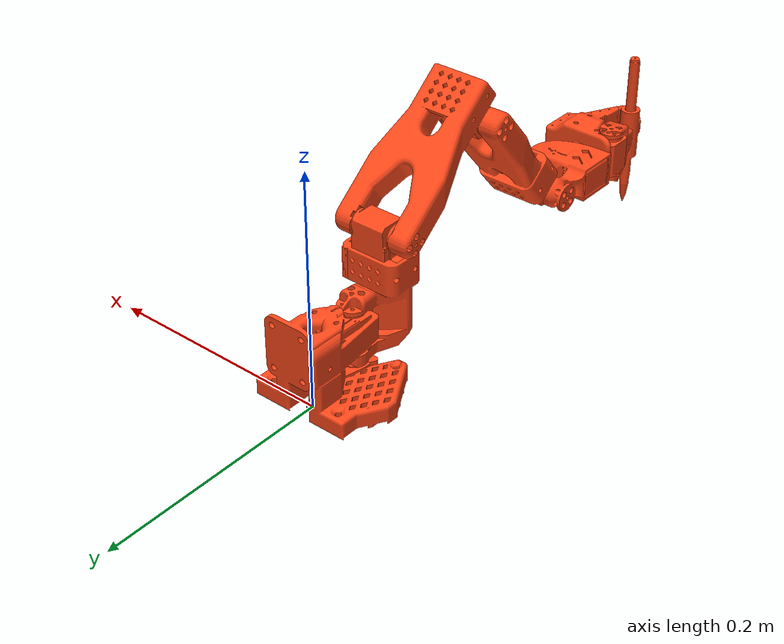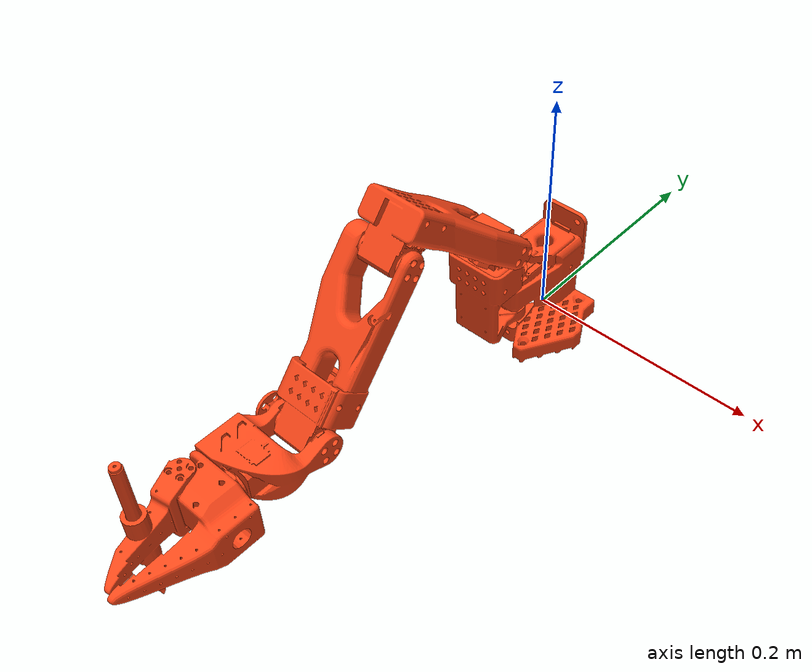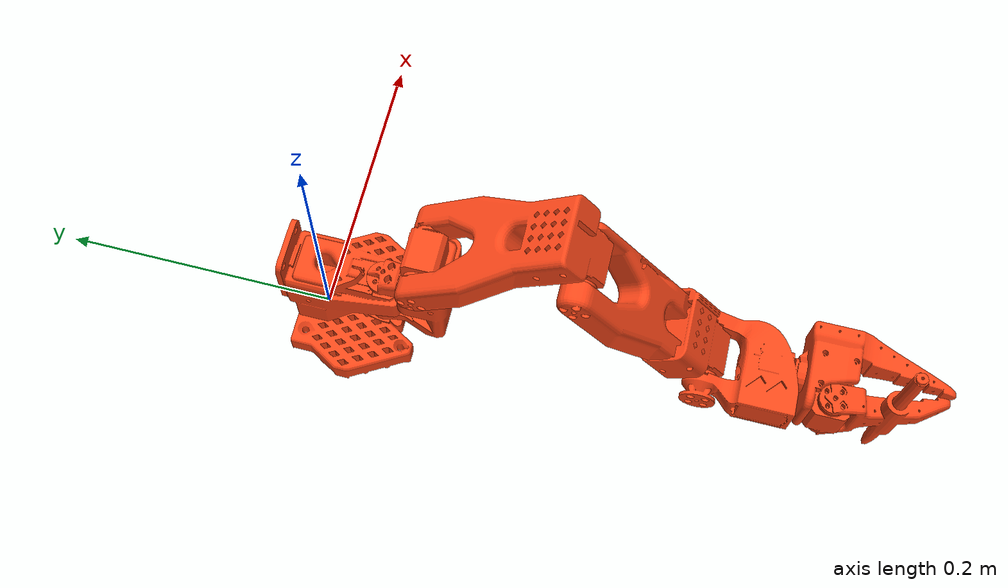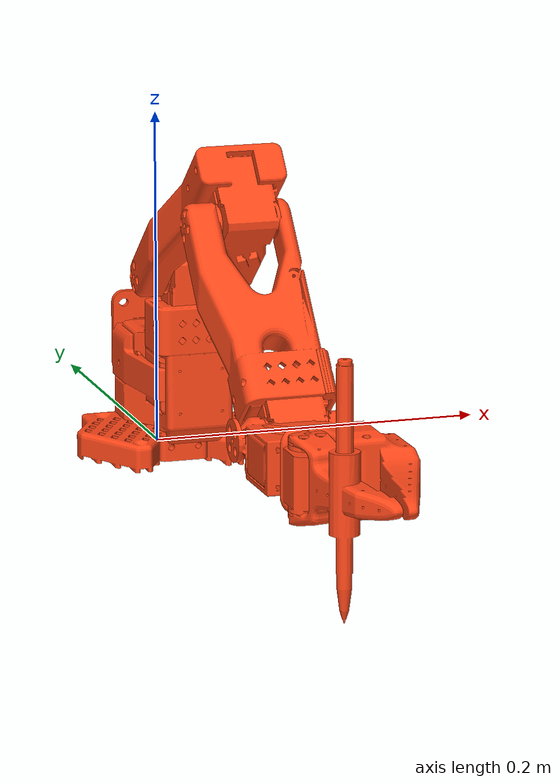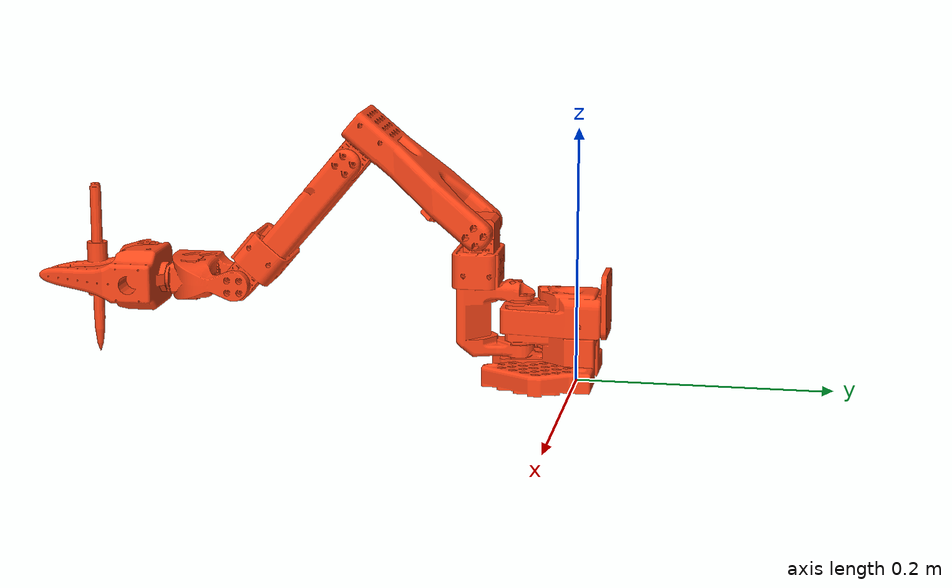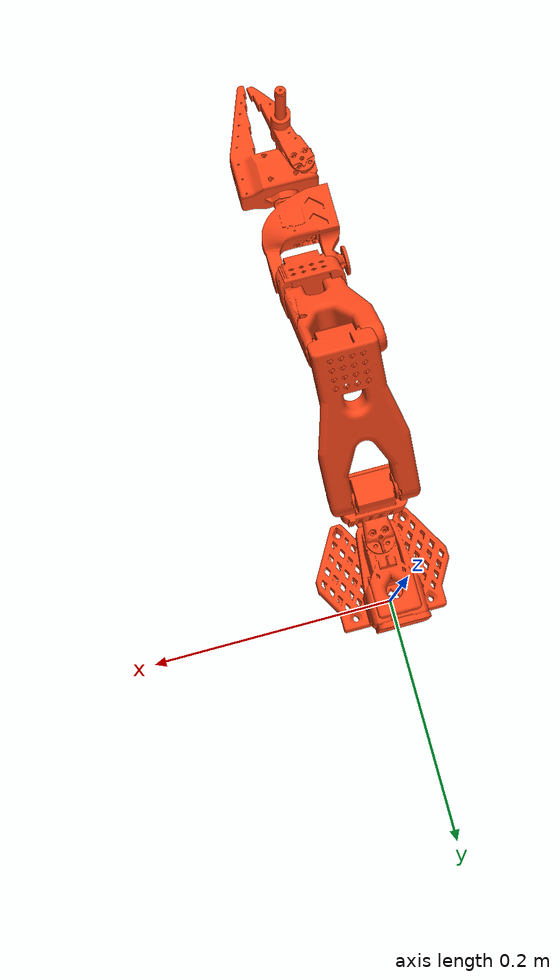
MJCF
<?xml version='1.0' encoding='utf-8'?>
<mujoco model="so_arm100_write">
  <default>
    <default class="robot">
      <default class="motor">
        <joint />
        <motor />
      </default>
      <default class="visual">
        <geom material="visualgeom" contype="0" conaffinity="0" group="2" />
      </default>
      <default class="collision">
        <geom material="collision_material" condim="3" contype="0" conaffinity="1" priority="1" group="1" solref="0.005 1" solimp="0.99 0.999 1e-05" friction="1 0.01 0.01" />
      </default>
    </default>
  </default>

  <compiler angle="radian" />

  <asset>
    <material name="material_1" rgba="0.21176 1 0.59608 1" />
    <material name="default_material" rgba="0.7 0.7 0.7 1" />
    <material name="collision_material" rgba="1.0 0.28 0.1 0.9" />
    <mesh name="base_link.STL" file="../arm_description/meshes/base_link.obj" />
    <mesh name="shoulder_link.STL" file="../arm_description/meshes/shoulder_link.obj" />
    <mesh name="upper_arm_link.STL" file="../arm_description/meshes/upper_arm_link.obj" />
    <mesh name="forearm_link.STL" file="../arm_description/meshes/forearm_link.obj" />
    <mesh name="wrist_1_link.STL" file="../arm_description/meshes/wrist_1_link.obj" />
    <mesh name="wrist_2_link.STL" file="../arm_description/meshes/wrist_2_link.obj" />
    <mesh name="jaw_link.STL" file="../arm_description/meshes/jaw_link.obj" />
    <mesh name="pen_point_link.STL" file="../arm_description/meshes/pen_point_link.obj" />
  </asset>

  <worldbody>
    <body name="base_link" pos="0.00000000 0.00000000 0.00000000" quat="1 0 0 0" childclass="robot">
      <freejoint name="floating_base" />
      <geom name="base_link_collision" pos="0 0 0" quat="1.0 0.0 0.0 0.0" type="mesh" mesh="base_link.STL" class="collision" />
      <geom name="base_link_visual" pos="0 0 0" quat="1.0 0.0 0.0 0.0" material="material_1" type="mesh" mesh="base_link.STL" class="visual" />
      <body name="shoulder_link" pos="0 -0.0452 0.0305" quat="0.7071054825112363 0.7071080798594735 0.0 0.0">
        <joint name="shoulder_pan_joint" type="hinge" ref="0.0" class="motor" range="-1.57 1.57" axis="0 1 0" />
        <inertial pos="-9.12316731584547E-05 0.0453803334798309 0.0312407304094353" quat="1.0 0.0 0.0 0.0" mass="0.118647318561975" diaginertia="5.90249308656609e-05 3.21184663530608e-05 5.85899047238746e-05" />
        <geom name="shoulder_link_collision" pos="0 0 0" quat="1.0 0.0 0.0 0.0" type="mesh" mesh="shoulder_link.STL" class="collision" />
        <geom name="shoulder_link_visual" pos="0 0 0" quat="1.0 0.0 0.0 0.0" material="material_1" type="mesh" mesh="shoulder_link.STL" class="visual" />
        <body name="upper_arm_link" pos="-0.0158000000000001 0.0885000000000001 0.0306" quat="1.0 0.0 0.0 0.0">
          <joint name="shoulder_lift_joint" type="hinge" ref="0.0" class="motor" range="-1.57 1.57" axis="-1 0 0" />
          <inertial pos="0.0156827940119797 0.0427320224136673 0.0557572855175068" quat="1.0 0.0 0.0 0.0" mass="0.162409410667205" diaginertia="0.000167153316638548 0.000152074160609916 0.000131401089309618" />
          <geom name="upper_arm_link_collision" pos="0 0 0" quat="1.0 0.0 0.0 0.0" type="mesh" mesh="upper_arm_link.STL" class="collision" />
          <geom name="upper_arm_link_visual" pos="0 0 0" quat="1.0 0.0 0.0 0.0" material="material_1" type="mesh" mesh="upper_arm_link.STL" class="visual" />
          <body name="forearm_link" pos="0.0317 0.050909 0.10423" quat="1.0 0.0 0.0 0.0">
            <joint name="elbow_joint" type="hinge" ref="0.0" class="motor" range="-1.57 1.57" axis="-1 0 0" />
            <inertial pos="-0.0193960366107941 -0.0579469913285191 0.0504221037322429" quat="1.0 0.0 0.0 0.0" mass="0.147967791829467" diaginertia="0.000105334009302061 8.54418962703684e-05 0.000104198951098453" />
            <geom name="forearm_link_collision" pos="0 0 0" quat="1.0 0.0 0.0 0.0" type="mesh" mesh="forearm_link.STL" class="collision" />
            <geom name="forearm_link_visual" pos="0 0 0" quat="1.0 0.0 0.0 0.0" material="material_1" type="mesh" mesh="forearm_link.STL" class="visual" />
            <body name="wrist_1_link" pos="0 -0.099997 0.090695" quat="1.0 0.0 0.0 0.0">
              <joint name="wrist_pitch_joint" type="hinge" ref="0.0" class="motor" range="-1.57 1.57" axis="-1 0 0" />
              <inertial pos="-0.0246265312098483 -2.34622220739861E-05 0.0352278998818427" quat="1.0 0.0 0.0 0.0" mass="0.0661320665571637" diaginertia="1.95717492021294e-05 3.45401433389061e-05 2.38028417058412e-05" />
              <geom name="wrist_1_link_collision" pos="0 0 0" quat="1.0 0.0 0.0 0.0" type="mesh" mesh="wrist_1_link.STL" class="collision" />
              <geom name="wrist_1_link_visual" pos="0 0 0" quat="1.0 0.0 0.0 0.0" material="material_1" type="mesh" mesh="wrist_1_link.STL" class="visual" />
              <body name="wrist_2_link" pos="-0.0161 0 0.0586" quat="1.0 0.0 0.0 0.0">
                <joint name="wrist_roll_joint" type="hinge" ref="0.0" class="motor" range="-1.57 1.57" axis="0 0 1" />
                <inertial pos="0.00553729748428378 0.000450839244584361 0.0295127614083582" quat="1.0 0.0 0.0 0.0" mass="0.0931646506349648" diaginertia="4.34101625638855e-05 5.02748039720235e-05 3.04999659487805e-05" />
                <geom name="wrist_2_link_collision" pos="0 0 0" quat="1.0 0.0 0.0 0.0" type="mesh" mesh="wrist_2_link.STL" class="collision" />
                <geom name="wrist_2_link_visual" pos="0 0 0" quat="1.0 0.0 0.0 0.0" material="material_1" type="mesh" mesh="wrist_2_link.STL" class="visual" />
                <body name="jaw_link" pos="-0.0202 -0.0155 0.0259" quat="1.0 0.0 0.0 0.0">
                  <joint name="jaw_joint" type="hinge" ref="0.0" class="motor" range="-1.57 1.57" axis="0 1 0" />
                  <inertial pos="0.00683341078896194 0.0157219157402943 0.0319538151911046" quat="1.0 0.0 0.0 0.0" mass="0.0254751555792519" diaginertia="1.34491906292739e-05 9.48711723454467e-06 5.96578705659465e-06" />
                  <geom name="jaw_link_collision" pos="0 0 0" quat="1.0 0.0 0.0 0.0" type="mesh" mesh="jaw_link.STL" class="collision" />
                  <geom name="jaw_link_visual" pos="0 0 0" quat="1.0 0.0 0.0 0.0" material="material_1" type="mesh" mesh="jaw_link.STL" class="visual" />
                  <body name="pen_point_link" pos="0.0071456 -0.051425 0.040525" quat="0.7071054825112363 -0.7071080798594735 0.0 0.0">
                    <inertial pos="-1.4051E-16 -4.4409E-16 -0.000825" quat="1.0 0.0 0.0 0.0" mass="1.7959E-07" diaginertia="8.8001e-15 8.8001e-15 8.8001e-15" />
                    <geom name="pen_point_link_collision" pos="0 0 0" quat="1.0 0.0 0.0 0.0" type="mesh" mesh="pen_point_link.STL" class="collision" />
                    <geom name="pen_point_link_visual" pos="0 0 0" quat="1.0 0.0 0.0 0.0" material="material_1" type="mesh" mesh="pen_point_link.STL" class="visual" />
                  </body>
                </body>
              </body>
            </body>
          </body>
        </body>
      </body>
      <site name="base_link_site" pos="0 0 0" quat="1 0 0 0" />
      <camera name="front_camera" mode="track" fovy="90.0" quat="4.329637285359678e-17 4.329637285359677e-17 0.7071067811865475 0.7071067811865476" pos="0.0 2.0 0.5" />
      <camera name="side_camera" mode="track" fovy="90.0" quat="-0.5 -0.4999999999999999 0.5 0.5000000000000001" pos="-2.0 0.0 0.5" />
    </body>
  </worldbody>

  <actuator>
    <motor name="shoulder_pan_joint_ctrl" joint="shoulder_pan_joint" class="motor" />
    <motor name="shoulder_lift_joint_ctrl" joint="shoulder_lift_joint" class="motor" />
    <motor name="elbow_joint_ctrl" joint="elbow_joint" class="motor" />
    <motor name="wrist_pitch_joint_ctrl" joint="wrist_pitch_joint" class="motor" />
    <motor name="wrist_roll_joint_ctrl" joint="wrist_roll_joint" class="motor" />
    <motor name="jaw_joint_ctrl" joint="jaw_joint" class="motor" />
  </actuator>

  <contact>
    <exclude body1="base_link" body2="shoulder_link" />
    <exclude body1="shoulder_link" body2="upper_arm_link" />
    <exclude body1="upper_arm_link" body2="forearm_link" />
    <exclude body1="forearm_link" body2="wrist_1_link" />
    <exclude body1="wrist_1_link" body2="wrist_2_link" />
    <exclude body1="wrist_2_link" body2="jaw_link" />
    <exclude body1="jaw_link" body2="pen_point_link" />
  </contact>

  <sensor>
    <framepos name="base_link_site_pos" objtype="site" objname="base_link_site" />
    <framequat name="base_link_site_quat" objtype="site" objname="base_link_site" />
    <framelinvel name="base_link_site_linvel" objtype="site" objname="base_link_site" />
    <frameangvel name="base_link_site_angvel" objtype="site" objname="base_link_site" />
    <velocimeter name="base_link_site_vel" site="base_link_site" />
  </sensor>
</mujoco>
